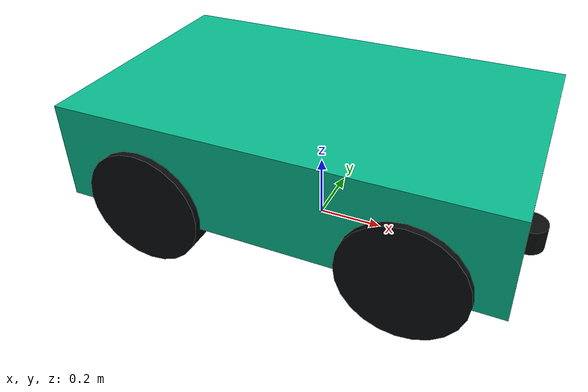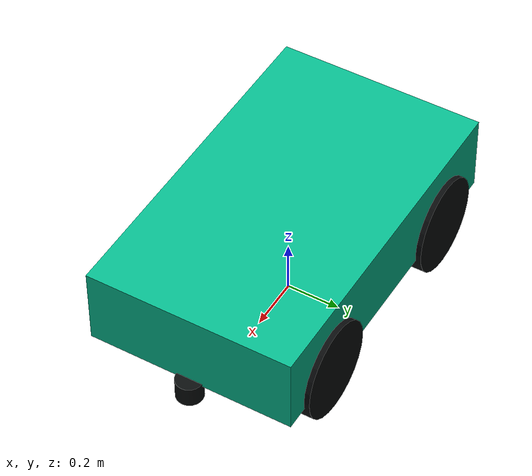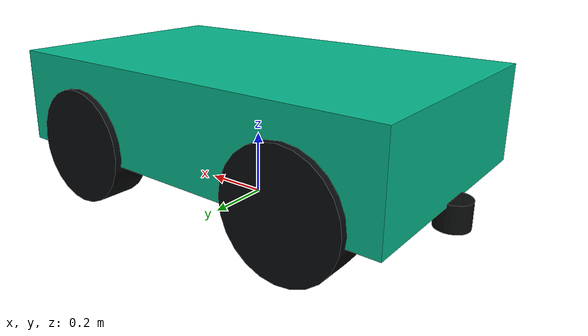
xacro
<?xml version="1.0"?>
<robot xmlns:xacro="http://www.ros.org/wiki/xacro" name="turtle_car">
  <!-- Vehicle dimensions (metres unless noted otherwise). -->
  <xacro:property name="vehicle_length" value="1.30"/>
  <xacro:property name="vehicle_width" value="0.78"/>
  <xacro:property name="body_length" value="1.30"/>
  <xacro:property name="body_width" value="0.78"/>
  <xacro:property name="body_height" value="0.30"/>
  <xacro:property name="body_bottom_from_ground" value="0.15"/>
  <xacro:property name="wheel_base" value="0.77"/>
  <xacro:property name="wheel_track" value="0.70"/>
  <xacro:property name="kingpin_width" value="0.32"/>
  <xacro:property name="wheel_radius" value="0.18"/>
  <xacro:property name="wheel_width" value="0.12"/>
  <!-- Physical limit of each front steering joint: exactly 28 deg. -->
  <xacro:property name="steering_limit" value="0.4886921906"/>
  <xacro:property name="steering_link_radius" value="0.020"/>
  <xacro:property name="steering_link_height" value="0.040"/>
  <!-- LiDAR centres are on the vehicle front/rear end planes. -->
  <xacro:property name="laser_x" value="0.65"/>
  <xacro:property name="laser_z_from_ground" value="0.12"/>
  <xacro:property name="laser_radius" value="0.050"/>
  <xacro:property name="laser_height" value="0.080"/>

  <!-- Total model mass is approximately 21.05 kg. -->
  <xacro:property name="chassis_mass" value="18.0"/>
  <xacro:property name="wheel_mass" value="0.60"/>
  <xacro:property name="steering_mass" value="0.15"/>
  <xacro:property name="laser_mass" value="0.10"/>

  <xacro:property name="wheel_i_axial"
                  value="${0.5 * wheel_mass * wheel_radius * wheel_radius}"/>
  <xacro:property name="wheel_i_radial"
                  value="${wheel_mass * (3.0 * wheel_radius * wheel_radius + wheel_width * wheel_width) / 12.0}"/>
  <xacro:property name="chassis_ixx"
                  value="${chassis_mass * (body_width * body_width + body_height * body_height) / 12.0}"/>
  <xacro:property name="chassis_iyy"
                  value="${chassis_mass * (body_length * body_length + body_height * body_height) / 12.0}"/>
  <xacro:property name="chassis_izz"
                  value="${chassis_mass * (body_length * body_length + body_width * body_width) / 12.0}"/>
  <xacro:property name="steering_i_axial"
                  value="${0.5 * steering_mass * steering_link_radius * steering_link_radius}"/>
  <xacro:property name="steering_i_radial"
                  value="${steering_mass * (3.0 * steering_link_radius * steering_link_radius + steering_link_height * steering_link_height) / 12.0}"/>
  <xacro:property name="laser_i_axial"
                  value="${0.5 * laser_mass * laser_radius * laser_radius}"/>
  <xacro:property name="laser_i_radial"
                  value="${laser_mass * (3.0 * laser_radius * laser_radius + laser_height * laser_height) / 12.0}"/>

  <material name="turtle_teal">
    <color rgba="0.02 0.72 0.55 1.0"/>
  </material>
  <material name="dark_tire">
    <color rgba="0.035 0.04 0.045 1.0"/>
  </material>
  <material name="metal">
    <color rgba="0.38 0.42 0.44 1.0"/>
  </material>
  <material name="laser_black">
    <color rgba="0.04 0.05 0.05 1.0"/>
  </material>

  <xacro:macro name="wheel_link" params="name">
    <link name="${name}">
      <inertial>
        <origin xyz="0 0 0" rpy="${pi / 2.0} 0 0"/>
        <mass value="${wheel_mass}"/>
        <inertia ixx="${wheel_i_radial}" ixy="0" ixz="0"
                 iyy="${wheel_i_radial}" iyz="0" izz="${wheel_i_axial}"/>
      </inertial>
      <visual>
        <origin xyz="0 0 0" rpy="${pi / 2.0} 0 0"/>
        <geometry>
          <cylinder radius="${wheel_radius}" length="${wheel_width}"/>
        </geometry>
        <material name="dark_tire"/>
      </visual>
      <collision>
        <origin xyz="0 0 0" rpy="${pi / 2.0} 0 0"/>
        <geometry>
          <cylinder radius="${wheel_radius}" length="${wheel_width}"/>
        </geometry>
      </collision>
    </link>
  </xacro:macro>

  <xacro:macro name="steering_link" params="name">
    <link name="${name}">
      <inertial>
        <mass value="${steering_mass}"/>
        <inertia ixx="${steering_i_radial}" ixy="0" ixz="0"
                 iyy="${steering_i_radial}" iyz="0" izz="${steering_i_axial}"/>
      </inertial>
      <visual>
        <geometry>
          <cylinder radius="${steering_link_radius}" length="${steering_link_height}"/>
        </geometry>
        <material name="metal"/>
      </visual>
    </link>
  </xacro:macro>

  <!-- Root at the tyre/ground contact plane. -->
  <link name="base_footprint">
    <!--
      Gazebo's URDF-to-SDF converter requires an inertial block when this
      fixed root is explicitly preserved. It has no geometry or collision.
    -->
    <inertial>
      <mass value="0.05"/>
      <inertia ixx="0.0001" ixy="0" ixz="0"
               iyy="0.0001" iyz="0" izz="0.0001"/>
    </inertial>
  </link>

  <link name="base_link">
    <inertial>
      <mass value="0.20"/>
      <inertia ixx="0.0005" ixy="0" ixz="0"
               iyy="0.0005" iyz="0" izz="0.0005"/>
    </inertial>
  </link>

  <joint name="base_footprint_joint" type="fixed">
    <parent link="base_footprint"/>
    <child link="base_link"/>
    <origin xyz="0 0 ${wheel_radius}" rpy="0 0 0"/>
  </joint>

  <link name="chassis_link">
    <inertial>
      <mass value="${chassis_mass}"/>
      <origin xyz="0 0 0" rpy="0 0 0"/>
      <inertia ixx="${chassis_ixx}" ixy="0" ixz="0"
               iyy="${chassis_iyy}" iyz="0" izz="${chassis_izz}"/>
    </inertial>
    <visual>
      <geometry>
        <box size="${body_length} ${body_width} ${body_height}"/>
      </geometry>
      <material name="turtle_teal"/>
    </visual>
    <collision>
      <geometry>
        <box size="${body_length} ${body_width} ${body_height}"/>
      </geometry>
    </collision>
  </link>

  <joint name="chassis_joint" type="fixed">
    <parent link="base_link"/>
    <child link="chassis_link"/>
    <!-- Keep the original body lower face at z=0.15 and grow upward. -->
    <origin xyz="0 0 ${body_bottom_from_ground + body_height / 2.0 - wheel_radius}" rpy="0 0 0"/>
  </joint>

  <xacro:steering_link name="front_left_steering_link"/>
  <xacro:steering_link name="front_right_steering_link"/>

  <joint name="front_left_steering_joint" type="revolute">
    <parent link="base_link"/>
    <child link="front_left_steering_link"/>
    <origin xyz="${wheel_base / 2.0} ${kingpin_width / 2.0} 0" rpy="0 0 0"/>
    <axis xyz="0 0 1"/>
    <limit lower="${-steering_limit}" upper="${steering_limit}"
           effort="20" velocity="0.6"/>
    <dynamics damping="15.0" friction="0.01"/>
  </joint>

  <joint name="front_right_steering_joint" type="revolute">
    <parent link="base_link"/>
    <child link="front_right_steering_link"/>
    <origin xyz="${wheel_base / 2.0} ${-kingpin_width / 2.0} 0" rpy="0 0 0"/>
    <axis xyz="0 0 1"/>
    <limit lower="${-steering_limit}" upper="${steering_limit}"
           effort="20" velocity="0.6"/>
    <dynamics damping="15.0" friction="0.01"/>
  </joint>

  <xacro:wheel_link name="front_left_wheel_link"/>
  <xacro:wheel_link name="front_right_wheel_link"/>
  <xacro:wheel_link name="rear_left_wheel_link"/>
  <xacro:wheel_link name="rear_right_wheel_link"/>

  <!-- Offset the front wheel centres from the 0.32 m kingpins to a 0.70 m track. -->
  <joint name="front_left_wheel_joint" type="continuous">
    <parent link="front_left_steering_link"/>
    <child link="front_left_wheel_link"/>
    <origin xyz="0 ${(wheel_track - kingpin_width) / 2.0} 0" rpy="0 0 0"/>
    <axis xyz="0 1 0"/>
    <limit effort="30" velocity="30"/>
    <dynamics damping="0.02" friction="0.002"/>
  </joint>

  <joint name="front_right_wheel_joint" type="continuous">
    <parent link="front_right_steering_link"/>
    <child link="front_right_wheel_link"/>
    <origin xyz="0 ${-(wheel_track - kingpin_width) / 2.0} 0" rpy="0 0 0"/>
    <axis xyz="0 1 0"/>
    <limit effort="30" velocity="30"/>
    <dynamics damping="0.02" friction="0.002"/>
  </joint>

  <joint name="rear_left_wheel_joint" type="continuous">
    <parent link="base_link"/>
    <child link="rear_left_wheel_link"/>
    <origin xyz="${-wheel_base / 2.0} ${wheel_track / 2.0} 0" rpy="0 0 0"/>
    <axis xyz="0 1 0"/>
    <limit effort="50" velocity="30"/>
    <dynamics damping="0.02" friction="0.002"/>
  </joint>

  <joint name="rear_right_wheel_joint" type="continuous">
    <parent link="base_link"/>
    <child link="rear_right_wheel_link"/>
    <origin xyz="${-wheel_base / 2.0} ${-wheel_track / 2.0} 0" rpy="0 0 0"/>
    <axis xyz="0 1 0"/>
    <limit effort="50" velocity="30"/>
    <dynamics damping="0.02" friction="0.002"/>
  </joint>

  <link name="laser_link">
    <inertial>
      <mass value="${laser_mass}"/>
      <inertia ixx="${laser_i_radial}" ixy="0" ixz="0"
               iyy="${laser_i_radial}" iyz="0" izz="${laser_i_axial}"/>
    </inertial>
    <visual>
      <geometry>
        <cylinder radius="${laser_radius}" length="${laser_height}"/>
      </geometry>
      <material name="laser_black"/>
    </visual>
    <collision>
      <geometry>
        <cylinder radius="${laser_radius}" length="${laser_height}"/>
      </geometry>
    </collision>
  </link>

  <joint name="laser_joint" type="fixed">
    <parent link="base_link"/>
    <child link="laser_link"/>
    <origin xyz="${laser_x} 0 ${laser_z_from_ground - wheel_radius}" rpy="0 0 0"/>
  </joint>

  <!-- Exact centre-symmetric counterpart of the front lidar. -->
  <link name="rear_laser_link">
    <inertial>
      <mass value="${laser_mass}"/>
      <inertia ixx="${laser_i_radial}" ixy="0" ixz="0"
               iyy="${laser_i_radial}" iyz="0" izz="${laser_i_axial}"/>
    </inertial>
    <visual>
      <geometry>
        <cylinder radius="${laser_radius}" length="${laser_height}"/>
      </geometry>
      <material name="laser_black"/>
    </visual>
    <collision>
      <geometry>
        <cylinder radius="${laser_radius}" length="${laser_height}"/>
      </geometry>
    </collision>
  </link>

  <joint name="rear_laser_joint" type="fixed">
    <parent link="base_link"/>
    <child link="rear_laser_link"/>
    <origin xyz="${-laser_x} 0 ${laser_z_from_ground - wheel_radius}"
            rpy="0 0 ${pi}"/>
  </joint>

  <xacro:include filename="turtle_car.gazebo.xacro"/>
</robot>
